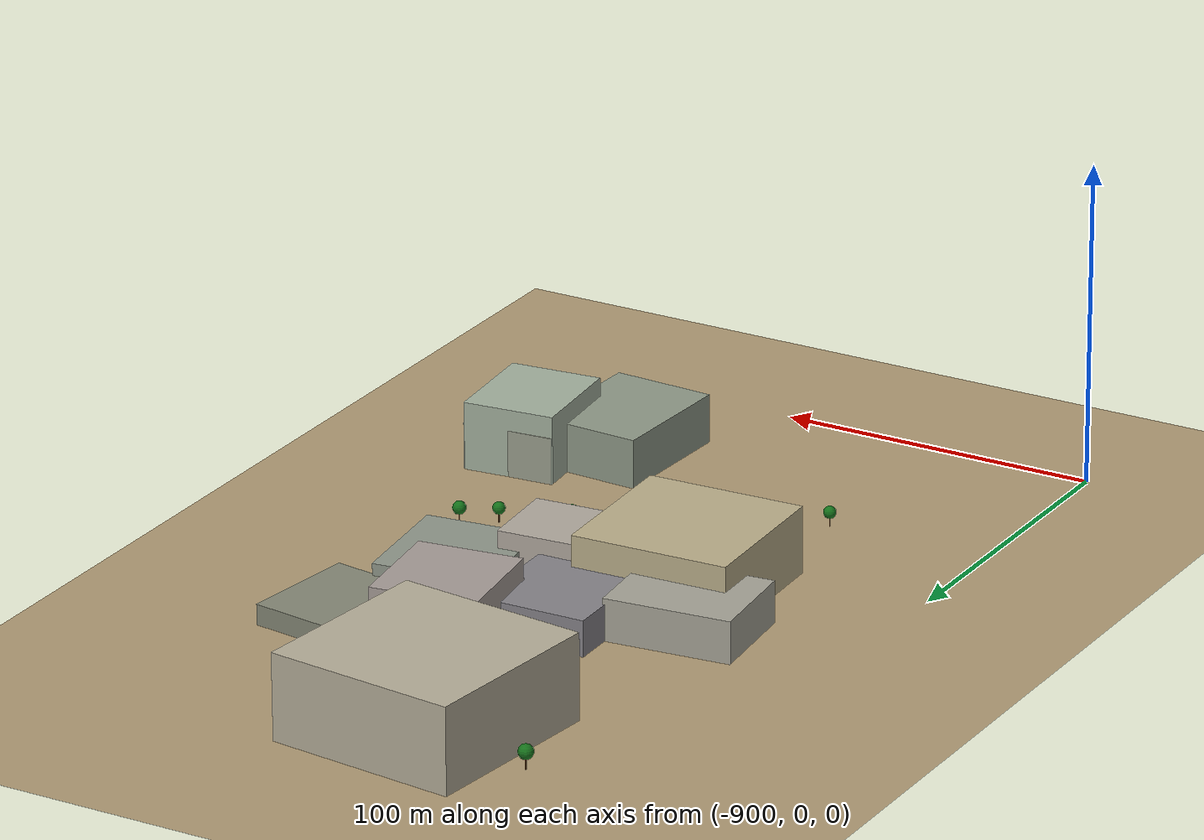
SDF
<sdf version="1.9">
 <world name="crossroad_world">
  <model name="ground_plane">
   <static>true</static>
   <pose>0 0 -0.05 0 0 0</pose>
   <link name="link">
    <collision name="collision">
     <geometry><plane><normal>0 0 1</normal><size>10000 10000</size></plane></geometry>
    </collision>
    <visual name="visual">
     <geometry><plane><normal>0 0 1</normal><size>15000 15000</size></plane></geometry>
     <material><ambient>0.68 0.60 0.45 1</ambient><diffuse>0.68 0.60 0.45 1</diffuse></material>
    </visual>
   </link>
  </model>
  <model name="tree_288">
   <static>true</static>
   <pose>-857.201 252.307 0 0 0 0</pose>
   <link name="link">
    <visual name="trunk">
     <pose>0 0 1.918 0 0 0</pose>
     <geometry><cylinder><radius>0.168</radius><length>3.836</length></cylinder></geometry>
     <material><ambient>0.38 0.22 0.08 1</ambient><diffuse>0.38 0.22 0.08 1</diffuse></material>
    </visual>
    <visual name="canopy">
     <pose>0 0 5.317 0 0 0</pose>
     <geometry><sphere><radius>2.278</radius></sphere></geometry>
     <material><ambient>0.08 0.44 0.10 1</ambient><diffuse>0.08 0.44 0.10 1</diffuse></material>
    </visual>
    <collision name="col">
     <pose>0 0 1.918 0 0 0</pose>
     <geometry><cylinder><radius>0.168</radius><length>3.836</length></cylinder></geometry>
    </collision>
   </link>
  </model>
  <model name="tree_341">
   <static>true</static>
   <pose>-794.975 97.057 0 0 0 0</pose>
   <link name="link">
    <visual name="trunk">
     <pose>0 0 1.219 0 0 0</pose>
     <geometry><cylinder><radius>0.107</radius><length>2.438</length></cylinder></geometry>
     <material><ambient>0.38 0.22 0.08 1</ambient><diffuse>0.38 0.22 0.08 1</diffuse></material>
    </visual>
    <visual name="canopy">
     <pose>0 0 3.379 0 0 0</pose>
     <geometry><sphere><radius>1.448</radius></sphere></geometry>
     <material><ambient>0.08 0.44 0.10 1</ambient><diffuse>0.08 0.44 0.10 1</diffuse></material>
    </visual>
    <collision name="col">
     <pose>0 0 1.219 0 0 0</pose>
     <geometry><cylinder><radius>0.107</radius><length>2.438</length></cylinder></geometry>
    </collision>
   </link>
  </model>
  <model name="tree_346">
   <static>true</static>
   <pose>-783.400 101.940 0 0 0 0</pose>
   <link name="link">
    <visual name="trunk">
     <pose>0 0 1.503 0 0 0</pose>
     <geometry><cylinder><radius>0.132</radius><length>3.006</length></cylinder></geometry>
     <material><ambient>0.38 0.22 0.08 1</ambient><diffuse>0.38 0.22 0.08 1</diffuse></material>
    </visual>
    <visual name="canopy">
     <pose>0 0 4.166 0 0 0</pose>
     <geometry><sphere><radius>1.785</radius></sphere></geometry>
     <material><ambient>0.08 0.44 0.10 1</ambient><diffuse>0.08 0.44 0.10 1</diffuse></material>
    </visual>
    <collision name="col">
     <pose>0 0 1.503 0 0 0</pose>
     <geometry><cylinder><radius>0.132</radius><length>3.006</length></cylinder></geometry>
    </collision>
   </link>
  </model>
  <model name="tree_348">
   <static>true</static>
   <pose>-754.451 117.887 0 0 0 0</pose>
   <link name="link">
    <visual name="trunk">
     <pose>0 0 1.734 0 0 0</pose>
     <geometry><cylinder><radius>0.152</radius><length>3.467</length></cylinder></geometry>
     <material><ambient>0.38 0.22 0.08 1</ambient><diffuse>0.38 0.22 0.08 1</diffuse></material>
    </visual>
    <visual name="canopy">
     <pose>0 0 4.806 0 0 0</pose>
     <geometry><sphere><radius>2.059</radius></sphere></geometry>
     <material><ambient>0.08 0.44 0.10 1</ambient><diffuse>0.08 0.44 0.10 1</diffuse></material>
    </visual>
    <collision name="col">
     <pose>0 0 1.734 0 0 0</pose>
     <geometry><cylinder><radius>0.152</radius><length>3.467</length></cylinder></geometry>
    </collision>
   </link>
  </model>
  <model name="tree_352">
   <static>true</static>
   <pose>-764.283 111.801 0 0 0 0</pose>
   <link name="link">
    <visual name="trunk">
     <pose>0 0 1.623 0 0 0</pose>
     <geometry><cylinder><radius>0.142</radius><length>3.245</length></cylinder></geometry>
     <material><ambient>0.38 0.22 0.08 1</ambient><diffuse>0.38 0.22 0.08 1</diffuse></material>
    </visual>
    <visual name="canopy">
     <pose>0 0 4.498 0 0 0</pose>
     <geometry><sphere><radius>1.927</radius></sphere></geometry>
     <material><ambient>0.08 0.44 0.10 1</ambient><diffuse>0.08 0.44 0.10 1</diffuse></material>
    </visual>
    <collision name="col">
     <pose>0 0 1.623 0 0 0</pose>
     <geometry><cylinder><radius>0.142</radius><length>3.245</length></cylinder></geometry>
    </collision>
   </link>
  </model>
  <model name="tree_354">
   <static>true</static>
   <pose>-811.717 88.140 0 0 0 0</pose>
   <link name="link">
    <visual name="trunk">
     <pose>0 0 1.383 0 0 0</pose>
     <geometry><cylinder><radius>0.121</radius><length>2.766</length></cylinder></geometry>
     <material><ambient>0.38 0.22 0.08 1</ambient><diffuse>0.38 0.22 0.08 1</diffuse></material>
    </visual>
    <visual name="canopy">
     <pose>0 0 3.834 0 0 0</pose>
     <geometry><sphere><radius>1.643</radius></sphere></geometry>
     <material><ambient>0.08 0.44 0.10 1</ambient><diffuse>0.08 0.44 0.10 1</diffuse></material>
    </visual>
    <collision name="col">
     <pose>0 0 1.383 0 0 0</pose>
     <geometry><cylinder><radius>0.121</radius><length>2.766</length></cylinder></geometry>
    </collision>
   </link>
  </model>
  <model name="tree_360">
   <static>true</static>
   <pose>-829.796 77.521 0 0 0 0</pose>
   <link name="link">
    <visual name="trunk">
     <pose>0 0 1.860 0 0 0</pose>
     <geometry><cylinder><radius>0.163</radius><length>3.719</length></cylinder></geometry>
     <material><ambient>0.38 0.22 0.08 1</ambient><diffuse>0.38 0.22 0.08 1</diffuse></material>
    </visual>
    <visual name="canopy">
     <pose>0 0 5.155 0 0 0</pose>
     <geometry><sphere><radius>2.208</radius></sphere></geometry>
     <material><ambient>0.08 0.44 0.10 1</ambient><diffuse>0.08 0.44 0.10 1</diffuse></material>
    </visual>
    <collision name="col">
     <pose>0 0 1.860 0 0 0</pose>
     <geometry><cylinder><radius>0.163</radius><length>3.719</length></cylinder></geometry>
    </collision>
   </link>
  </model>
  <model name="tree_363">
   <static>true</static>
   <pose>-806.905 88.746 0 0 0 0</pose>
   <link name="link">
    <visual name="trunk">
     <pose>0 0 1.324 0 0 0</pose>
     <geometry><cylinder><radius>0.116</radius><length>2.649</length></cylinder></geometry>
     <material><ambient>0.38 0.22 0.08 1</ambient><diffuse>0.38 0.22 0.08 1</diffuse></material>
    </visual>
    <visual name="canopy">
     <pose>0 0 3.671 0 0 0</pose>
     <geometry><sphere><radius>1.573</radius></sphere></geometry>
     <material><ambient>0.08 0.44 0.10 1</ambient><diffuse>0.08 0.44 0.10 1</diffuse></material>
    </visual>
    <collision name="col">
     <pose>0 0 1.324 0 0 0</pose>
     <geometry><cylinder><radius>0.116</radius><length>2.649</length></cylinder></geometry>
    </collision>
   </link>
  </model>
  <model name="tree_365">
   <static>true</static>
   <pose>-849.748 66.581 0 0 0 0</pose>
   <link name="link">
    <visual name="trunk">
     <pose>0 0 1.623 0 0 0</pose>
     <geometry><cylinder><radius>0.142</radius><length>3.245</length></cylinder></geometry>
     <material><ambient>0.38 0.22 0.08 1</ambient><diffuse>0.38 0.22 0.08 1</diffuse></material>
    </visual>
    <visual name="canopy">
     <pose>0 0 4.498 0 0 0</pose>
     <geometry><sphere><radius>1.927</radius></sphere></geometry>
     <material><ambient>0.08 0.44 0.10 1</ambient><diffuse>0.08 0.44 0.10 1</diffuse></material>
    </visual>
    <collision name="col">
     <pose>0 0 1.623 0 0 0</pose>
     <geometry><cylinder><radius>0.142</radius><length>3.245</length></cylinder></geometry>
    </collision>
   </link>
  </model>
  <model name="building_121">
   <static>true</static>
   <pose>-820.915 244.722 13.346 0 0 -0.111</pose>
   <link name="link">
    <visual name="body">
     <geometry><box><size>60.00 60.00 26.69</size></box></geometry>
     <material><ambient>0.71 0.68 0.60 1</ambient><diffuse>0.71 0.68 0.60 1</diffuse></material>
    </visual>
    <collision name="col"><geometry><box><size>60.00 60.00 26.69</size></box></geometry></collision>
   </link>
  </model>
  <model name="building_160">
   <static>true</static>
   <pose>-850.962 151.898 6.603 0 0 0.095</pose>
   <link name="link">
    <visual name="body">
     <geometry><box><size>39.29 31.15 13.21</size></box></geometry>
     <material><ambient>0.65 0.64 0.59 1</ambient><diffuse>0.65 0.64 0.59 1</diffuse></material>
    </visual>
    <collision name="col"><geometry><box><size>39.29 31.15 13.21</size></box></geometry></collision>
   </link>
  </model>
  <model name="building_161">
   <static>true</static>
   <pose>-799.060 133.928 7.837 0 0 0.081</pose>
   <link name="link">
    <visual name="body">
     <geometry><box><size>29.23 25.82 15.67</size></box></geometry>
     <material><ambient>0.69 0.66 0.62 1</ambient><diffuse>0.69 0.66 0.62 1</diffuse></material>
    </visual>
    <collision name="col"><geometry><box><size>29.23 25.82 15.67</size></box></geometry></collision>
   </link>
  </model>
  <model name="building_162">
   <static>true</static>
   <pose>-775.425 154.233 5.114 0 0 0.119</pose>
   <link name="link">
    <visual name="body">
     <geometry><box><size>35.41 37.75 10.23</size></box></geometry>
     <material><ambient>0.56 0.59 0.54 1</ambient><diffuse>0.56 0.59 0.54 1</diffuse></material>
    </visual>
    <collision name="col"><geometry><box><size>35.41 37.75 10.23</size></box></geometry></collision>
   </link>
  </model>
  <model name="building_409">
   <static>true</static>
   <pose>-835.484 125.571 10.535 0 0 0.041</pose>
   <link name="link">
    <visual name="body">
     <geometry><box><size>49.25 48.93 21.07</size></box></geometry>
     <material><ambient>0.73 0.68 0.54 1</ambient><diffuse>0.73 0.68 0.54 1</diffuse></material>
    </visual>
    <collision name="col"><geometry><box><size>49.25 48.93 21.07</size></box></geometry></collision>
   </link>
  </model>
  <model name="building_412">
   <static>true</static>
   <pose>-762.002 192.648 3.230 0 0 -0.135</pose>
   <link name="link">
    <visual name="body">
     <geometry><box><size>35.04 36.43 6.46</size></box></geometry>
     <material><ambient>0.52 0.53 0.46 1</ambient><diffuse>0.52 0.53 0.46 1</diffuse></material>
    </visual>
    <collision name="col"><geometry><box><size>35.04 36.43 6.46</size></box></geometry></collision>
   </link>
  </model>
  <model name="building_418">
   <static>true</static>
   <pose>-791.156 185.094 9.024 0 0 0.133</pose>
   <link name="link">
    <visual name="body">
     <geometry><box><size>32.53 34.69 18.05</size></box></geometry>
     <material><ambient>0.65 0.61 0.59 1</ambient><diffuse>0.65 0.61 0.59 1</diffuse></material>
    </visual>
    <collision name="col"><geometry><box><size>32.53 34.69 18.05</size></box></geometry></collision>
   </link>
  </model>
  <model name="building_420">
   <static>true</static>
   <pose>-816.568 164.744 5.650 0 0 0.022</pose>
   <link name="link">
    <visual name="body">
     <geometry><box><size>33.69 34.68 11.30</size></box></geometry>
     <material><ambient>0.52 0.51 0.53 1</ambient><diffuse>0.52 0.51 0.53 1</diffuse></material>
    </visual>
    <collision name="col"><geometry><box><size>33.69 34.68 11.30</size></box></geometry></collision>
   </link>
  </model>
  <model name="building_535">
   <static>true</static>
   <pose>-747.699 64.658 10.723 0 0 0.096</pose>
   <link name="link">
    <visual name="body">
     <geometry><box><size>28.89 33.77 21.45</size></box></geometry>
     <material><ambient>0.64 0.69 0.62 1</ambient><diffuse>0.64 0.69 0.62 1</diffuse></material>
    </visual>
    <collision name="col"><geometry><box><size>28.89 33.77 21.45</size></box></geometry></collision>
   </link>
  </model>
  <model name="building_536">
   <static>true</static>
   <pose>-747.699 64.658 7.363 0 0 0.074</pose>
   <link name="link">
    <visual name="body">
     <geometry><box><size>28.89 33.77 14.73</size></box></geometry>
     <material><ambient>0.60 0.62 0.55 1</ambient><diffuse>0.60 0.62 0.55 1</diffuse></material>
    </visual>
    <collision name="col"><geometry><box><size>28.89 33.77 14.73</size></box></geometry></collision>
   </link>
  </model>
  <model name="building_538">
   <static>true</static>
   <pose>-770.974 49.196 7.728 0 0 -0.050</pose>
   <link name="link">
    <visual name="body">
     <geometry><box><size>32.25 42.02 15.46</size></box></geometry>
     <material><ambient>0.56 0.60 0.53 1</ambient><diffuse>0.56 0.60 0.53 1</diffuse></material>
    </visual>
    <collision name="col"><geometry><box><size>32.25 42.02 15.46</size></box></geometry></collision>
   </link>
  </model>
 </world>
</sdf>
